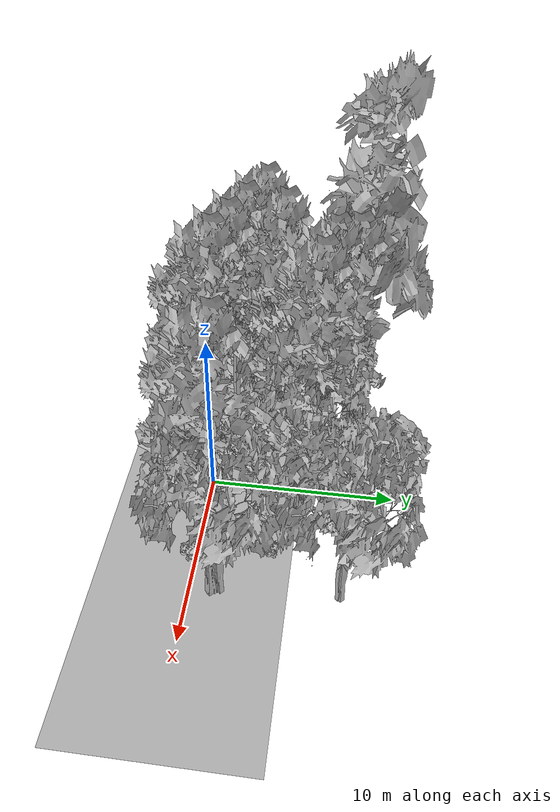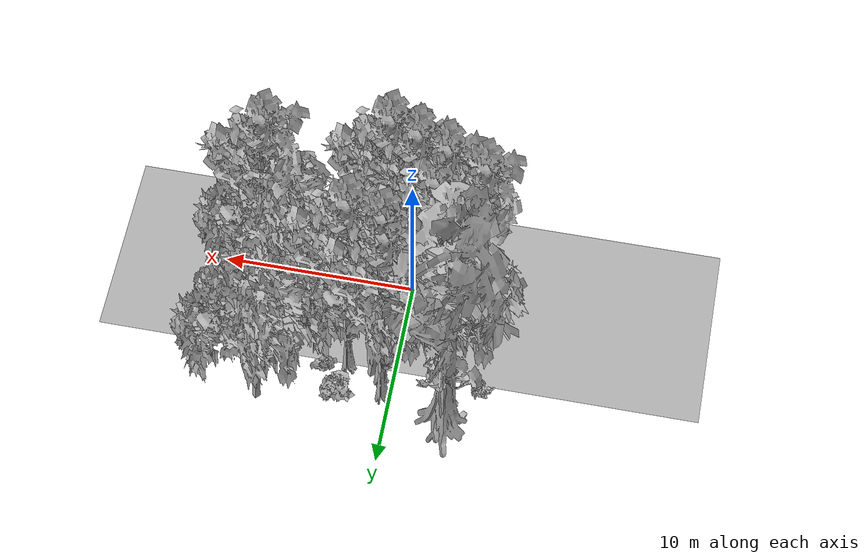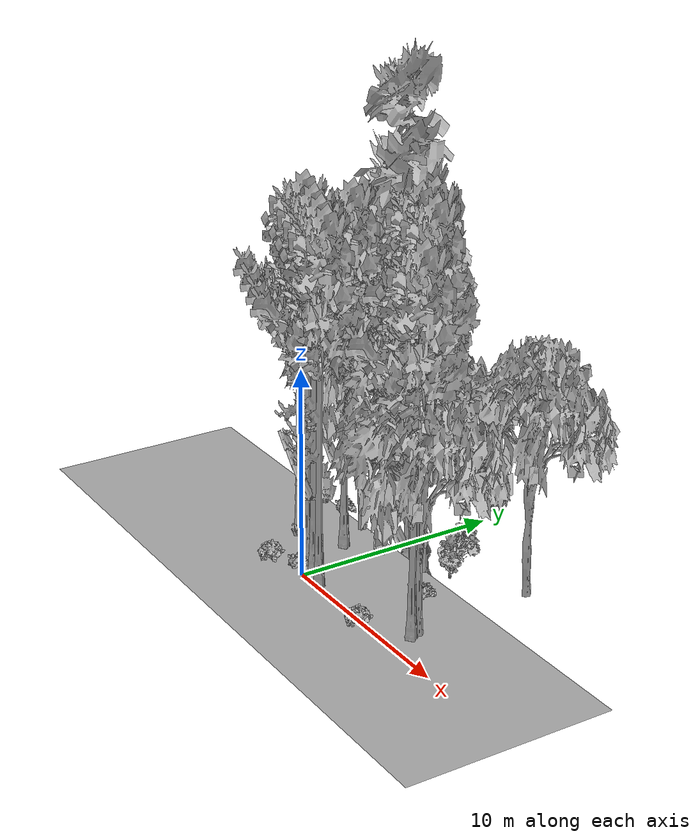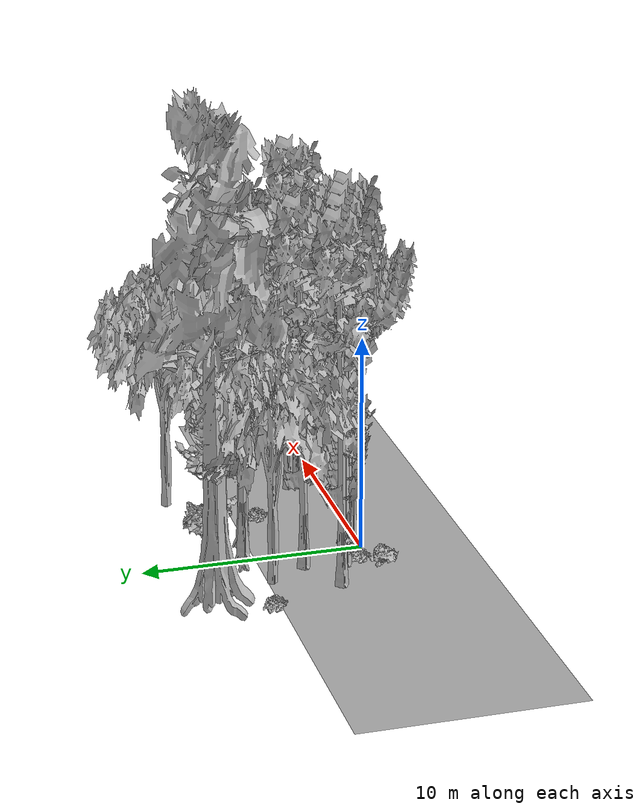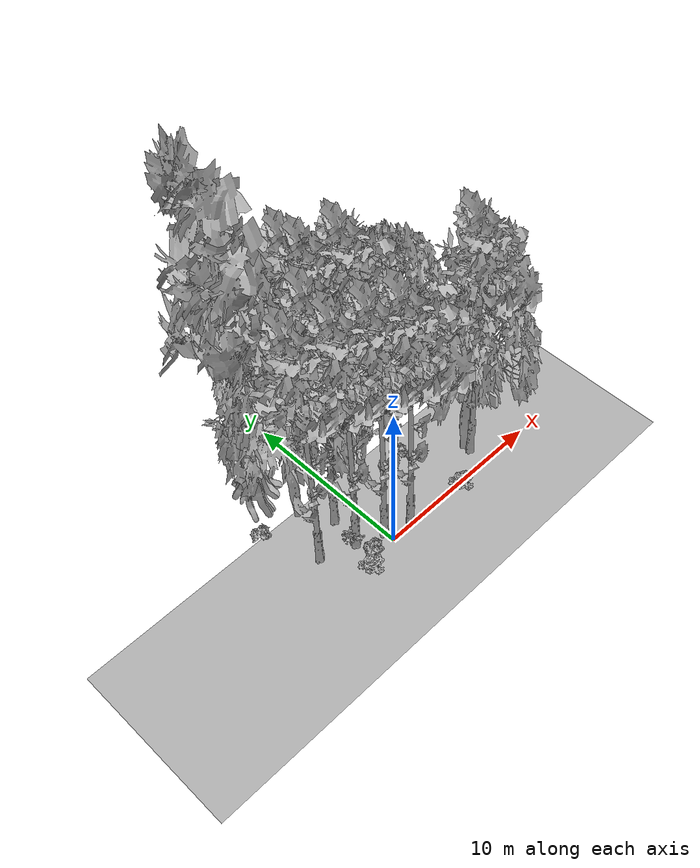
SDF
<sdf version="1.7">
 <world name="default">
  <model name="ground_plane">
   <static>1</static>
   <link name="link">
    <collision name="collision">
     <geometry><plane><normal>0 0 1</normal><size>100 100</size></plane></geometry>
     <surface><contact><ode><min_depth>0.01</min_depth><max_vel>0</max_vel></ode></contact></surface>
    </collision>
    <visual name="grass">
     <cast_shadows>0</cast_shadows>
     <geometry>
      <mesh>
       <scale>0.5814285714285714 0.18142857142857144 0.1</scale>
       <uri>file://grass_plane/meshes/grass_plane.dae</uri>
      </mesh>
     </geometry>
    </visual>
   </link>
  </model>
  <model name="Tree 19">
   <static>1</static>
   <pose>-3.428938288911354 1.88049050284922 0 1.57079 -0 0</pose>
   <link name="link">
    <collision name="collision">
     <geometry><mesh><scale>3.5 5 3.5</scale><uri>model://tree_9/meshes/tree_9.obj</uri></mesh></geometry>
    </collision>
    <visual name="visual">
     <geometry><mesh><scale>3.5 5 3.5</scale><uri>model://tree_9/meshes/tree_9.obj</uri></mesh></geometry>
    </visual>
   </link>
  </model>
  <model name="Tree 49">
   <static>1</static>
   <pose>-3.0331949632349477 7.368754885857783 0 1.57079 -0 0</pose>
   <link name="link">
    <collision name="collision">
     <geometry><mesh><scale>3.5 5 3.5</scale><uri>model://tree_4/meshes/tree_4.obj</uri></mesh></geometry>
    </collision>
    <visual name="visual">
     <geometry><mesh><scale>3.5 5 3.5</scale><uri>model://tree_4/meshes/tree_4.obj</uri></mesh></geometry>
    </visual>
   </link>
  </model>
  <model name="Tree 85">
   <static>1</static>
   <pose>1.0559390465942542 5.174904364787263 0 1.57079 -0 0</pose>
   <link name="link">
    <collision name="collision">
     <geometry><mesh><scale>3.5 5 3.5</scale><uri>model://tree_2/meshes/tree_2.obj</uri></mesh></geometry>
    </collision>
    <visual name="visual">
     <geometry><mesh><scale>3.5 5 3.5</scale><uri>model://tree_2/meshes/tree_2.obj</uri></mesh></geometry>
    </visual>
   </link>
  </model>
  <model name="Tree 88">
   <static>1</static>
   <pose>6.900581068825588 1.5254100171446474 0 1.57079 -0 0</pose>
   <link name="link">
    <collision name="collision">
     <geometry><mesh><scale>3.5 5 3.5</scale><uri>model://tree_2/meshes/tree_2.obj</uri></mesh></geometry>
    </collision>
    <visual name="visual">
     <geometry><mesh><scale>3.5 5 3.5</scale><uri>model://tree_2/meshes/tree_2.obj</uri></mesh></geometry>
    </visual>
   </link>
  </model>
  <model name="Tree 97">
   <static>1</static>
   <pose>-1.3046830304143242 3.0139003985972685 0 1.57079 -0 0</pose>
   <link name="link">
    <collision name="collision">
     <geometry><mesh><scale>3.5 5 3.5</scale><uri>model://tree_9/meshes/tree_9.obj</uri></mesh></geometry>
    </collision>
    <visual name="visual">
     <geometry><mesh><scale>3.5 5 3.5</scale><uri>model://tree_9/meshes/tree_9.obj</uri></mesh></geometry>
    </visual>
   </link>
  </model>
  <model name="Tree 115">
   <static>1</static>
   <pose>-0.04326521024818675 0.6209224062916938 0 1.57079 -0 0</pose>
   <link name="link">
    <collision name="collision">
     <geometry><mesh><scale>3.5 5 3.5</scale><uri>model://tree_9/meshes/tree_9.obj</uri></mesh></geometry>
    </collision>
    <visual name="visual">
     <geometry><mesh><scale>3.5 5 3.5</scale><uri>model://tree_9/meshes/tree_9.obj</uri></mesh></geometry>
    </visual>
   </link>
  </model>
  <model name="Tree 166">
   <static>1</static>
   <pose>0.3957389390584183 6.221401108024171 0 1.57079 -0 0</pose>
   <link name="link">
    <collision name="collision">
     <geometry><mesh><scale>3.5 5 3.5</scale><uri>model://tree_9/meshes/tree_9.obj</uri></mesh></geometry>
    </collision>
    <visual name="visual">
     <geometry><mesh><scale>3.5 5 3.5</scale><uri>model://tree_9/meshes/tree_9.obj</uri></mesh></geometry>
    </visual>
   </link>
  </model>
  <model name="Tree 221">
   <static>1</static>
   <pose>-1.5320363777441912 1.1784628526224736 0 1.57079 -0 0</pose>
   <link name="link">
    <collision name="collision">
     <geometry><mesh><scale>3.5 5 3.5</scale><uri>model://tree_9/meshes/tree_9.obj</uri></mesh></geometry>
    </collision>
    <visual name="visual">
     <geometry><mesh><scale>3.5 5 3.5</scale><uri>model://tree_9/meshes/tree_9.obj</uri></mesh></geometry>
    </visual>
   </link>
  </model>
  <model name="Tree 251">
   <static>1</static>
   <pose>0.6478802541155559 5.2878012555985805 0 1.57079 -0 0</pose>
   <link name="link">
    <collision name="collision">
     <geometry><mesh><scale>3.5 5 3.5</scale><uri>model://tree_9/meshes/tree_9.obj</uri></mesh></geometry>
    </collision>
    <visual name="visual">
     <geometry><mesh><scale>3.5 5 3.5</scale><uri>model://tree_9/meshes/tree_9.obj</uri></mesh></geometry>
    </visual>
   </link>
  </model>
  <model name="Tree 293">
   <static>1</static>
   <pose>2.419430773390893 4.876166141986456 0 1.57079 -0 0</pose>
   <link name="link">
    <collision name="collision">
     <geometry><mesh><scale>3.5 5 3.5</scale><uri>model://tree_9/meshes/tree_9.obj</uri></mesh></geometry>
    </collision>
    <visual name="visual">
     <geometry><mesh><scale>3.5 5 3.5</scale><uri>model://tree_9/meshes/tree_9.obj</uri></mesh></geometry>
    </visual>
   </link>
  </model>
  <model name="Tree 305">
   <static>1</static>
   <pose>1.3073779687812248 0.07985553015379132 0 1.57079 -0 0</pose>
   <link name="link">
    <collision name="collision">
     <geometry><mesh><scale>3.5 5 3.5</scale><uri>model://tree_9/meshes/tree_9.obj</uri></mesh></geometry>
    </collision>
    <visual name="visual">
     <geometry><mesh><scale>3.5 5 3.5</scale><uri>model://tree_9/meshes/tree_9.obj</uri></mesh></geometry>
    </visual>
   </link>
  </model>
  <model name="Tree 358">
   <static>1</static>
   <pose>6.594442410061703 7.458933276189221 0 1.57079 -0 0</pose>
   <link name="link">
    <collision name="collision">
     <geometry><mesh><scale>3.5 5 3.5</scale><uri>model://tree_2/meshes/tree_2.obj</uri></mesh></geometry>
    </collision>
    <visual name="visual">
     <geometry><mesh><scale>3.5 5 3.5</scale><uri>model://tree_2/meshes/tree_2.obj</uri></mesh></geometry>
    </visual>
   </link>
  </model>
  <model name="Tree 363">
   <static>1</static>
   <pose>7.083885793453824 1.1249398543665308 0 1.57079 -0 0</pose>
   <link name="link">
    <collision name="collision">
     <geometry><mesh><scale>3.5 5 3.5</scale><uri>model://tree_9/meshes/tree_9.obj</uri></mesh></geometry>
    </collision>
    <visual name="visual">
     <geometry><mesh><scale>3.5 5 3.5</scale><uri>model://tree_9/meshes/tree_9.obj</uri></mesh></geometry>
    </visual>
   </link>
  </model>
  <model name="Tree 425">
   <static>1</static>
   <pose>-2.467978610838486 4.687434054133519 0 1.57079 -0 0</pose>
   <link name="link">
    <collision name="collision">
     <geometry><mesh><scale>3.5 5 3.5</scale><uri>model://tree_2/meshes/tree_2.obj</uri></mesh></geometry>
    </collision>
    <visual name="visual">
     <geometry><mesh><scale>3.5 5 3.5</scale><uri>model://tree_2/meshes/tree_2.obj</uri></mesh></geometry>
    </visual>
   </link>
  </model>
  <model name="Bush 17">
   <static>1</static>
   <pose>-4.583740532726125 5.102010198676123 0 1.57079 -0 0</pose>
   <link name="link">
    <collision name="collision">
     <geometry><mesh><scale>2 2 2</scale><uri>model://bush_2/meshes/bush_2.obj</uri></mesh></geometry>
     <surface><contact><collide_without_contact>false</collide_without_contact></contact></surface>
    </collision>
    <visual name="visual">
     <geometry><mesh><scale>2 2 2</scale><uri>model://bush_2/meshes/bush_2.obj</uri></mesh></geometry>
    </visual>
   </link>
  </model>
  <model name="Bush 69">
   <static>1</static>
   <pose>-1.90866415762693 -0.4157506206875077 0 1.57079 -0 0</pose>
   <link name="link">
    <collision name="collision">
     <geometry><mesh><scale>2 2 2</scale><uri>model://bush_3/meshes/bush_3.obj</uri></mesh></geometry>
     <surface><contact><collide_without_contact>false</collide_without_contact></contact></surface>
    </collision>
    <visual name="visual">
     <geometry><mesh><scale>2 2 2</scale><uri>model://bush_3/meshes/bush_3.obj</uri></mesh></geometry>
    </visual>
   </link>
  </model>
  <model name="Bush 110">
   <static>1</static>
   <pose>5.086863786681192 -0.13941716576744057 0 1.57079 -0 0</pose>
   <link name="link">
    <collision name="collision">
     <geometry><mesh><scale>2 2 2</scale><uri>model://bush_3/meshes/bush_3.obj</uri></mesh></geometry>
     <surface><contact><collide_without_contact>false</collide_without_contact></contact></surface>
    </collision>
    <visual name="visual">
     <geometry><mesh><scale>2 2 2</scale><uri>model://bush_3/meshes/bush_3.obj</uri></mesh></geometry>
    </visual>
   </link>
  </model>
  <model name="Bush 144">
   <static>1</static>
   <pose>4.207331081285311 3.7426127191970764 0 1.57079 -0 0</pose>
   <link name="link">
    <collision name="collision">
     <geometry><mesh><scale>2 2 2</scale><uri>model://bush_2/meshes/bush_2.obj</uri></mesh></geometry>
     <surface><contact><collide_without_contact>false</collide_without_contact></contact></surface>
    </collision>
    <visual name="visual">
     <geometry><mesh><scale>2 2 2</scale><uri>model://bush_2/meshes/bush_2.obj</uri></mesh></geometry>
    </visual>
   </link>
  </model>
  <model name="Bush 170">
   <static>1</static>
   <pose>-1.0725332896999404 0.38299971921610165 0 1.57079 -0 0</pose>
   <link name="link">
    <collision name="collision">
     <geometry><mesh><scale>2 2 2</scale><uri>model://bush_2/meshes/bush_2.obj</uri></mesh></geometry>
     <surface><contact><collide_without_contact>false</collide_without_contact></contact></surface>
    </collision>
    <visual name="visual">
     <geometry><mesh><scale>2 2 2</scale><uri>model://bush_2/meshes/bush_2.obj</uri></mesh></geometry>
    </visual>
   </link>
  </model>
  <model name="Bush 231">
   <static>1</static>
   <pose>-1.754741287713017 1.315735837363711 0 1.57079 -0 0</pose>
   <link name="link">
    <collision name="collision">
     <geometry><mesh><scale>2 2 2</scale><uri>model://bush_5/meshes/bush_5.obj</uri></mesh></geometry>
     <surface><contact><collide_without_contact>false</collide_without_contact></contact></surface>
    </collision>
    <visual name="visual">
     <geometry><mesh><scale>2 2 2</scale><uri>model://bush_5/meshes/bush_5.obj</uri></mesh></geometry>
    </visual>
   </link>
  </model>
  <model name="Bush 277">
   <static>1</static>
   <pose>3.71200309579352 5.489436120078054 0 1.57079 -0 0</pose>
   <link name="link">
    <collision name="collision">
     <geometry><mesh><scale>2 2 2</scale><uri>model://bush_0/meshes/bush_0.obj</uri></mesh></geometry>
     <surface><contact><collide_without_contact>false</collide_without_contact></contact></surface>
    </collision>
    <visual name="visual">
     <geometry><mesh><scale>2 2 2</scale><uri>model://bush_0/meshes/bush_0.obj</uri></mesh></geometry>
    </visual>
   </link>
  </model>
  <model name="Bush 288">
   <static>1</static>
   <pose>2.654401517077588 6.64212372700425 0 1.57079 -0 0</pose>
   <link name="link">
    <collision name="collision">
     <geometry><mesh><scale>2 2 2</scale><uri>model://bush_1/meshes/bush_1.obj</uri></mesh></geometry>
     <surface><contact><collide_without_contact>false</collide_without_contact></contact></surface>
    </collision>
    <visual name="visual">
     <geometry><mesh><scale>2 2 2</scale><uri>model://bush_1/meshes/bush_1.obj</uri></mesh></geometry>
    </visual>
   </link>
  </model>
 </world>
</sdf>
